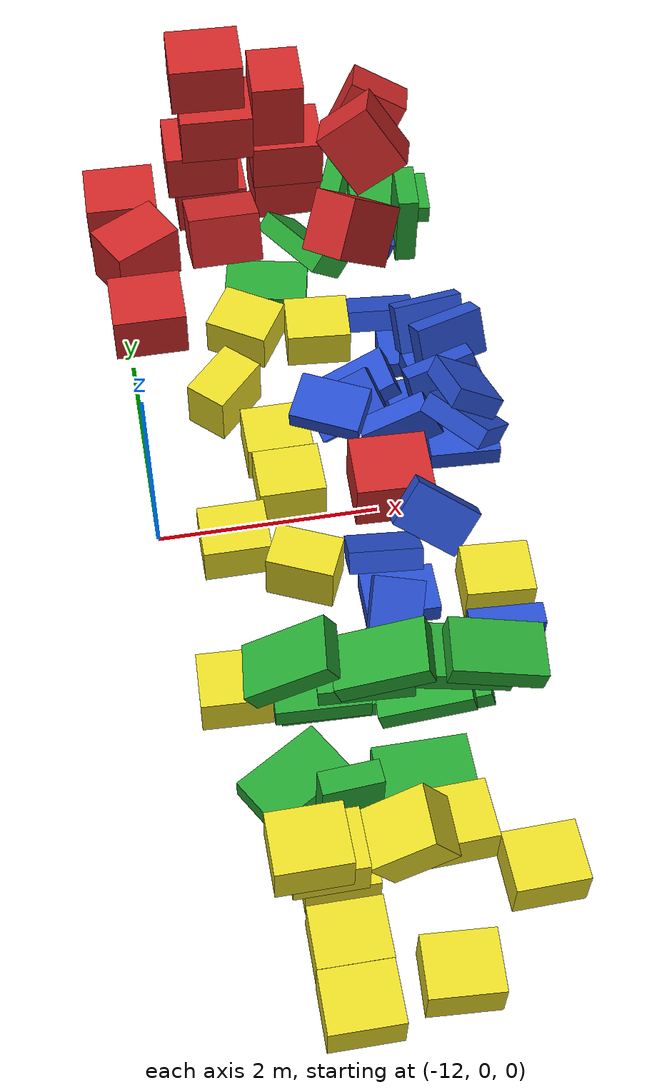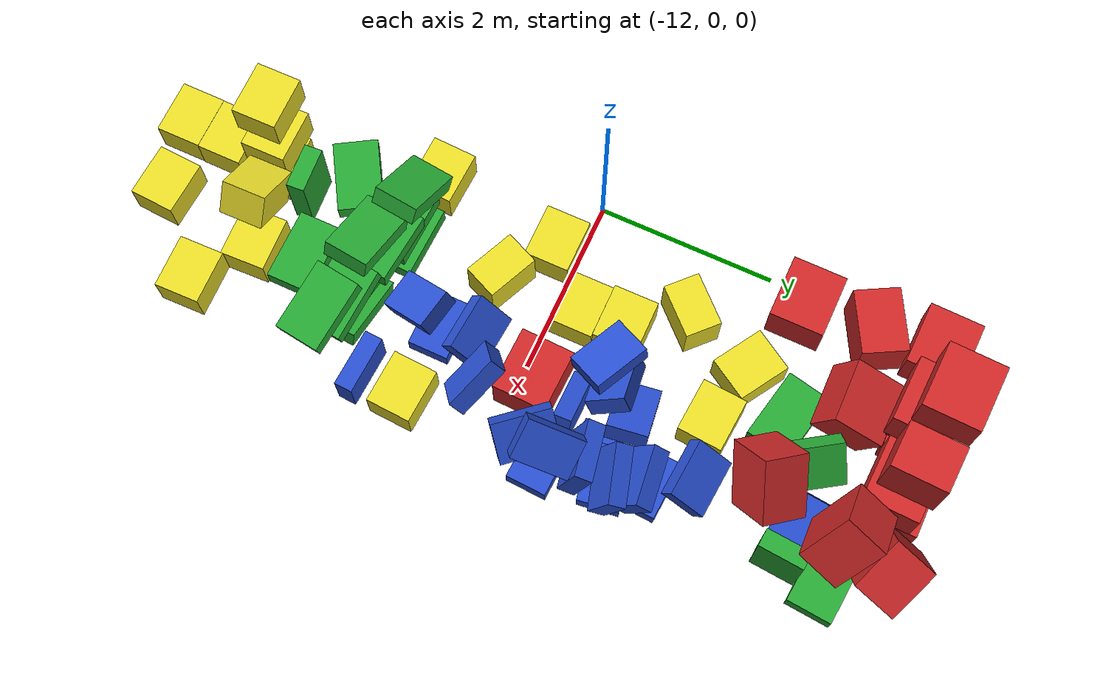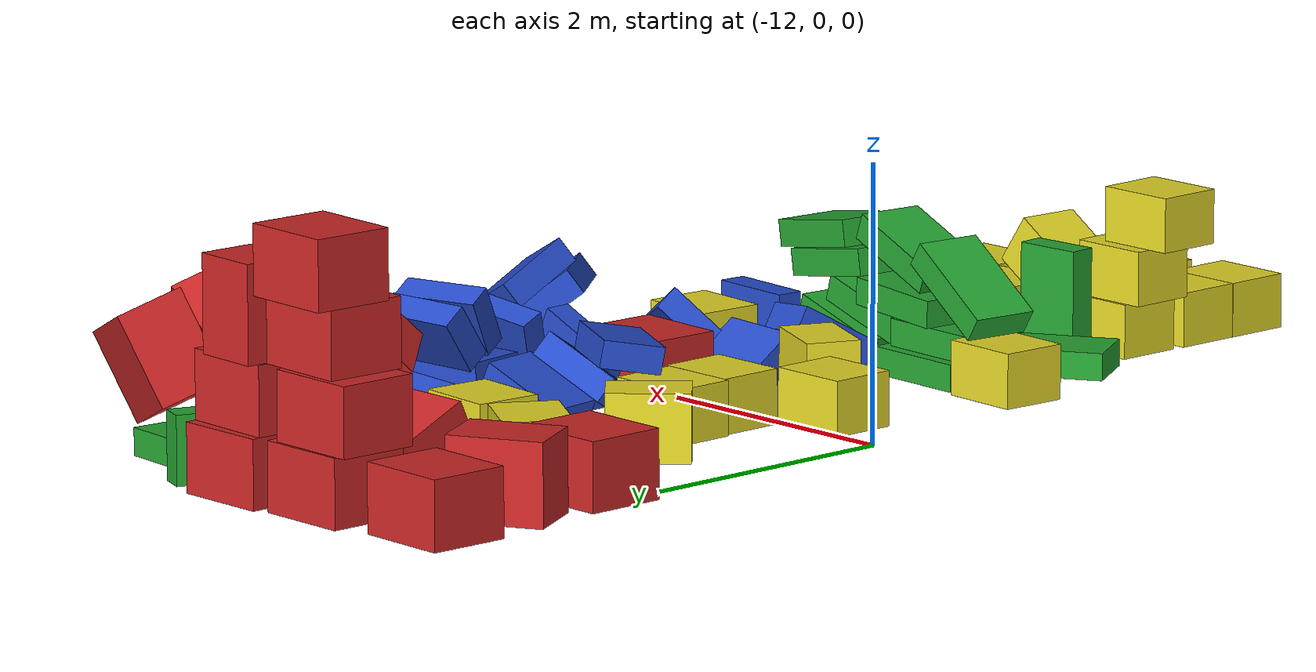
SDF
<sdf version="1.6">
 <world name="default">
  <model name="baggage_C">
   <static>0</static>
   <link name="link">
    <collision name="collision"><geometry><box><size>0.6 0.5 0.4</size></box></geometry></collision>
    <visual name="visual">
     <geometry><box><size>0.6 0.5 0.4</size></box></geometry>
     <material>
      <script><uri>file://media/materials/scripts/gazebo.material</uri><name>Gazebo/Yellow</name></script>
     </material>
    </visual>
    <inertial>
     <inertia><ixx>1</ixx><ixy>0</ixy><ixz>0</ixz><iyy>1</iyy><iyz>0</iyz><izz>1</izz></inertia>
     <mass>1</mass>
    </inertial>
   </link>
   <pose>-10.0024 -3.21625 0.19997 -0 1e-06 0.03848</pose>
  </model>
  <model name="baggage_B_clone_9">
   <static>0</static>
   <link name="link">
    <collision name="collision"><geometry><box><size>0.65 0.45 0.2</size></box></geometry></collision>
    <visual name="visual">
     <geometry><box><size>0.65 0.45 0.2</size></box></geometry>
     <material>
      <script><uri>file://media/materials/scripts/gazebo.material</uri><name>Gazebo/Blue</name></script>
     </material>
    </visual>
    <inertial>
     <inertia><ixx>1</ixx><ixy>0</ixy><ixz>0</ixz><iyy>1</iyy><iyz>0</iyz><izz>1</izz></inertia>
     <mass>1</mass>
    </inertial>
   </link>
   <pose>-9.09562 0.56977 0.099987 5e-06 1.2e-05 -0.04829</pose>
  </model>
  <model name="baggage_B_clone_12">
   <static>0</static>
   <link name="link">
    <collision name="collision"><geometry><box><size>0.65 0.45 0.2</size></box></geometry></collision>
    <visual name="visual">
     <geometry><box><size>0.65 0.45 0.2</size></box></geometry>
     <material>
      <script><uri>file://media/materials/scripts/gazebo.material</uri><name>Gazebo/Blue</name></script>
     </material>
    </visual>
    <inertial>
     <inertia><ixx>1</ixx><ixy>0</ixy><ixz>0</ixz><iyy>1</iyy><iyz>0</iyz><izz>1</izz></inertia>
     <mass>1</mass>
    </inertial>
   </link>
   <pose>-9.57464 2.12773 0.201535 -0.541106 -2.3e-05 -0.080653</pose>
  </model>
  <model name="baggage_B_clone_13">
   <static>0</static>
   <link name="link">
    <collision name="collision"><geometry><box><size>0.65 0.45 0.2</size></box></geometry></collision>
    <visual name="visual">
     <geometry><box><size>0.65 0.45 0.2</size></box></geometry>
     <material>
      <script><uri>file://media/materials/scripts/gazebo.material</uri><name>Gazebo/Blue</name></script>
     </material>
    </visual>
    <inertial>
     <inertia><ixx>1</ixx><ixy>0</ixy><ixz>0</ixz><iyy>1</iyy><iyz>0</iyz><izz>1</izz></inertia>
     <mass>1</mass>
    </inertial>
   </link>
   <pose>-9.33932 1.69038 0.099796 -6e-06 1.5e-05 -0.068763</pose>
  </model>
  <model name="baggage_B_clone_14">
   <static>0</static>
   <link name="link">
    <collision name="collision"><geometry><box><size>0.65 0.45 0.2</size></box></geometry></collision>
    <visual name="visual">
     <geometry><box><size>0.65 0.45 0.2</size></box></geometry>
     <material>
      <script><uri>file://media/materials/scripts/gazebo.material</uri><name>Gazebo/Blue</name></script>
     </material>
    </visual>
    <inertial>
     <inertia><ixx>1</ixx><ixy>0</ixy><ixz>0</ixz><iyy>1</iyy><iyz>0</iyz><izz>1</izz></inertia>
     <mass>1</mass>
    </inertial>
   </link>
   <pose>-9.56282 3.24194 0.200423 -3.14159 0.331866 -0.098079</pose>
  </model>
  <model name="baggage_B_clone_15">
   <static>0</static>
   <link name="link">
    <collision name="collision"><geometry><box><size>0.65 0.45 0.2</size></box></geometry></collision>
    <visual name="visual">
     <geometry><box><size>0.65 0.45 0.2</size></box></geometry>
     <material>
      <script><uri>file://media/materials/scripts/gazebo.material</uri><name>Gazebo/Blue</name></script>
     </material>
    </visual>
    <inertial>
     <inertia><ixx>1</ixx><ixy>0</ixy><ixz>0</ixz><iyy>1</iyy><iyz>0</iyz><izz>1</izz></inertia>
     <mass>1</mass>
    </inertial>
   </link>
   <pose>-9.99996 -1.00392 0.099626 3e-05 -5.6e-05 -0.006165</pose>
  </model>
  <model name="baggage_C_clone_0">
   <static>0</static>
   <link name="link">
    <collision name="collision"><geometry><box><size>0.6 0.5 0.4</size></box></geometry></collision>
    <visual name="visual">
     <geometry><box><size>0.6 0.5 0.4</size></box></geometry>
     <material>
      <script><uri>file://media/materials/scripts/gazebo.material</uri><name>Gazebo/Yellow</name></script>
     </material>
    </visual>
    <inertial>
     <inertia><ixx>1</ixx><ixy>0</ixy><ixz>0</ixz><iyy>1</iyy><iyz>0</iyz><izz>1</izz></inertia>
     <mass>1</mass>
    </inertial>
   </link>
   <pose>-11.0017 -4.52372 0.199999 1e-06 -2e-06 -0.001946</pose>
  </model>
  <model name="baggage_C_clone_1">
   <static>0</static>
   <link name="link">
    <collision name="collision"><geometry><box><size>0.6 0.5 0.4</size></box></geometry></collision>
    <visual name="visual">
     <geometry><box><size>0.6 0.5 0.4</size></box></geometry>
     <material>
      <script><uri>file://media/materials/scripts/gazebo.material</uri><name>Gazebo/Yellow</name></script>
     </material>
    </visual>
    <inertial>
     <inertia><ixx>1</ixx><ixy>0</ixy><ixz>0</ixz><iyy>1</iyy><iyz>0</iyz><izz>1</izz></inertia>
     <mass>1</mass>
    </inertial>
   </link>
   <pose>-9.38817 -3.67013 0.199992 -3.14158 5e-06 0.022305</pose>
  </model>
  <model name="baggage_C_clone_2">
   <static>0</static>
   <link name="link">
    <collision name="collision"><geometry><box><size>0.6 0.5 0.4</size></box></geometry></collision>
    <visual name="visual">
     <geometry><box><size>0.6 0.5 0.4</size></box></geometry>
     <material>
      <script><uri>file://media/materials/scripts/gazebo.material</uri><name>Gazebo/Yellow</name></script>
     </material>
    </visual>
    <inertial>
     <inertia><ixx>1</ixx><ixy>0</ixy><ixz>0</ixz><iyy>1</iyy><iyz>0</iyz><izz>1</izz></inertia>
     <mass>1</mass>
    </inertial>
   </link>
   <pose>-10.9967 -4.02251 0.199999 2e-06 2e-06 -0.001425</pose>
  </model>
  <model name="baggage_C_clone_3">
   <static>0</static>
   <link name="link">
    <collision name="collision"><geometry><box><size>0.6 0.5 0.4</size></box></geometry></collision>
    <visual name="visual">
     <geometry><box><size>0.6 0.5 0.4</size></box></geometry>
     <material>
      <script><uri>file://media/materials/scripts/gazebo.material</uri><name>Gazebo/Yellow</name></script>
     </material>
    </visual>
    <inertial>
     <inertia><ixx>1</ixx><ixy>0</ixy><ixz>0</ixz><iyy>1</iyy><iyz>0</iyz><izz>1</izz></inertia>
     <mass>1</mass>
    </inertial>
   </link>
   <pose>-10.8818 2.17288 0.200003 3e-05 -2.3e-05 -0.552718</pose>
  </model>
  <model name="baggage_C_clone_4">
   <static>0</static>
   <link name="link">
    <collision name="collision"><geometry><box><size>0.6 0.5 0.4</size></box></geometry></collision>
    <visual name="visual">
     <geometry><box><size>0.6 0.5 0.4</size></box></geometry>
     <material>
      <script><uri>file://media/materials/scripts/gazebo.material</uri><name>Gazebo/Yellow</name></script>
     </material>
    </visual>
    <inertial>
     <inertia><ixx>1</ixx><ixy>0</ixy><ixz>0</ixz><iyy>1</iyy><iyz>0</iyz><izz>1</izz></inertia>
     <mass>1</mass>
    </inertial>
   </link>
   <pose>-10.7751 -0.648973 0.25 -1.5708 1e-06 -0.420451</pose>
  </model>
  <model name="baggage_C_clone_5">
   <static>0</static>
   <link name="link">
    <collision name="collision"><geometry><box><size>0.6 0.5 0.4</size></box></geometry></collision>
    <visual name="visual">
     <geometry><box><size>0.6 0.5 0.4</size></box></geometry>
     <material>
      <script><uri>file://media/materials/scripts/gazebo.material</uri><name>Gazebo/Yellow</name></script>
     </material>
    </visual>
    <inertial>
     <inertia><ixx>1</ixx><ixy>0</ixy><ixz>0</ixz><iyy>1</iyy><iyz>0</iyz><izz>1</izz></inertia>
     <mass>1</mass>
    </inertial>
   </link>
   <pose>-9.15669 -1.03519 0.199995 -3.14159 0 -0.059287</pose>
  </model>
  <model name="baggage_C_clone_6">
   <static>0</static>
   <link name="link">
    <collision name="collision"><geometry><box><size>0.6 0.5 0.4</size></box></geometry></collision>
    <visual name="visual">
     <geometry><box><size>0.6 0.5 0.4</size></box></geometry>
     <material>
      <script><uri>file://media/materials/scripts/gazebo.material</uri><name>Gazebo/Yellow</name></script>
     </material>
    </visual>
    <inertial>
     <inertia><ixx>1</ixx><ixy>0</ixy><ixz>0</ixz><iyy>1</iyy><iyz>0</iyz><izz>1</izz></inertia>
     <mass>1</mass>
    </inertial>
   </link>
   <pose>-10.2092 -4.3999 0.200001 3.14159 -0 -0.062981</pose>
  </model>
  <model name="baggage_C_clone_7">
   <static>0</static>
   <link name="link">
    <collision name="collision"><geometry><box><size>0.6 0.5 0.4</size></box></geometry></collision>
    <visual name="visual">
     <geometry><box><size>0.6 0.5 0.4</size></box></geometry>
     <material>
      <script><uri>file://media/materials/scripts/gazebo.material</uri><name>Gazebo/Yellow</name></script>
     </material>
    </visual>
    <inertial>
     <inertia><ixx>1</ixx><ixy>0</ixy><ixz>0</ixz><iyy>1</iyy><iyz>0</iyz><izz>1</izz></inertia>
     <mass>1</mass>
    </inertial>
   </link>
   <pose>-11.238 -3.5718 0.999986 2.7e-05 -1.9e-05 0.007549</pose>
  </model>
  <model name="baggage_C_clone_8">
   <static>0</static>
   <link name="link">
    <collision name="collision"><geometry><box><size>0.6 0.5 0.4</size></box></geometry></collision>
    <visual name="visual">
     <geometry><box><size>0.6 0.5 0.4</size></box></geometry>
     <material>
      <script><uri>file://media/materials/scripts/gazebo.material</uri><name>Gazebo/Yellow</name></script>
     </material>
    </visual>
    <inertial>
     <inertia><ixx>1</ixx><ixy>0</ixy><ixz>0</ixz><iyy>1</iyy><iyz>0</iyz><izz>1</izz></inertia>
     <mass>1</mass>
    </inertial>
   </link>
   <pose>-10.4253 -3.38527 0.554591 0.022847 -0.577296 -0.003336</pose>
  </model>
  <model name="baggage_C_clone_9">
   <static>0</static>
   <link name="link">
    <collision name="collision"><geometry><box><size>0.6 0.5 0.4</size></box></geometry></collision>
    <visual name="visual">
     <geometry><box><size>0.6 0.5 0.4</size></box></geometry>
     <material>
      <script><uri>file://media/materials/scripts/gazebo.material</uri><name>Gazebo/Yellow</name></script>
     </material>
    </visual>
    <inertial>
     <inertia><ixx>1</ixx><ixy>0</ixy><ixz>0</ixz><iyy>1</iyy><iyz>0</iyz><izz>1</izz></inertia>
     <mass>1</mass>
    </inertial>
   </link>
   <pose>-11.2 1.37021 0.249999 -1.57079 1e-06 0.810669</pose>
  </model>
  <model name="baggage_C_clone_10">
   <static>0</static>
   <link name="link">
    <collision name="collision"><geometry><box><size>0.6 0.5 0.4</size></box></geometry></collision>
    <visual name="visual">
     <geometry><box><size>0.6 0.5 0.4</size></box></geometry>
     <material>
      <script><uri>file://media/materials/scripts/gazebo.material</uri><name>Gazebo/Yellow</name></script>
     </material>
    </visual>
    <inertial>
     <inertia><ixx>1</ixx><ixy>0</ixy><ixz>0</ixz><iyy>1</iyy><iyz>0</iyz><izz>1</izz></inertia>
     <mass>1</mass>
    </inertial>
   </link>
   <pose>-10.9828 -3.43446 0.200002 0 -8e-06 -0.003334</pose>
  </model>
  <model name="baggage_C_clone_11">
   <static>0</static>
   <link name="link">
    <collision name="collision"><geometry><box><size>0.6 0.5 0.4</size></box></geometry></collision>
    <visual name="visual">
     <geometry><box><size>0.6 0.5 0.4</size></box></geometry>
     <material>
      <script><uri>file://media/materials/scripts/gazebo.material</uri><name>Gazebo/Yellow</name></script>
     </material>
    </visual>
    <inertial>
     <inertia><ixx>1</ixx><ixy>0</ixy><ixz>0</ixz><iyy>1</iyy><iyz>0</iyz><izz>1</izz></inertia>
     <mass>1</mass>
    </inertial>
   </link>
   <pose>-11.086 -3.459 0.599988 1e-05 -2e-05 0.006204</pose>
  </model>
  <model name="baggage_C_clone_12">
   <static>0</static>
   <link name="link">
    <collision name="collision"><geometry><box><size>0.6 0.5 0.4</size></box></geometry></collision>
    <visual name="visual">
     <geometry><box><size>0.6 0.5 0.4</size></box></geometry>
     <material>
      <script><uri>file://media/materials/scripts/gazebo.material</uri><name>Gazebo/Yellow</name></script>
     </material>
    </visual>
    <inertial>
     <inertia><ixx>1</ixx><ixy>0</ixy><ixz>0</ixz><iyy>1</iyy><iyz>0</iyz><izz>1</izz></inertia>
     <mass>1</mass>
    </inertial>
   </link>
   <pose>-11.5507 -1.72457 0.2 0 0 -0.042376</pose>
  </model>
  <model name="baggage_C_clone_13">
   <static>0</static>
   <link name="link">
    <collision name="collision"><geometry><box><size>0.6 0.5 0.4</size></box></geometry></collision>
    <visual name="visual">
     <geometry><box><size>0.6 0.5 0.4</size></box></geometry>
     <material>
      <script><uri>file://media/materials/scripts/gazebo.material</uri><name>Gazebo/Yellow</name></script>
     </material>
    </visual>
    <inertial>
     <inertia><ixx>1</ixx><ixy>0</ixy><ixz>0</ixz><iyy>1</iyy><iyz>0</iyz><izz>1</izz></inertia>
     <mass>1</mass>
    </inertial>
   </link>
   <pose>-10.2107 2.01865 0.200039 -8e-06 -4.8e-05 -0.077626</pose>
  </model>
  <model name="baggage_C_clone_14">
   <static>0</static>
   <link name="link">
    <collision name="collision"><geometry><box><size>0.6 0.5 0.4</size></box></geometry></collision>
    <visual name="visual">
     <geometry><box><size>0.6 0.5 0.4</size></box></geometry>
     <material>
      <script><uri>file://media/materials/scripts/gazebo.material</uri><name>Gazebo/Yellow</name></script>
     </material>
    </visual>
    <inertial>
     <inertia><ixx>1</ixx><ixy>0</ixy><ixz>0</ixz><iyy>1</iyy><iyz>0</iyz><izz>1</izz></inertia>
     <mass>1</mass>
    </inertial>
   </link>
   <pose>-10.7647 0.281198 0.199983 0 1e-06 0.002002</pose>
  </model>
  <model name="baggage_C_clone_15">
   <static>0</static>
   <link name="link">
    <collision name="collision"><geometry><box><size>0.6 0.5 0.4</size></box></geometry></collision>
    <visual name="visual">
     <geometry><box><size>0.6 0.5 0.4</size></box></geometry>
     <material>
      <script><uri>file://media/materials/scripts/gazebo.material</uri><name>Gazebo/Yellow</name></script>
     </material>
    </visual>
    <inertial>
     <inertia><ixx>1</ixx><ixy>0</ixy><ixz>0</ixz><iyy>1</iyy><iyz>0</iyz><izz>1</izz></inertia>
     <mass>1</mass>
    </inertial>
   </link>
   <pose>-10.8004 0.781658 0.2 0 -0 0.004001</pose>
  </model>
  <model name="baggage_C_clone_16">
   <static>0</static>
   <link name="link">
    <collision name="collision"><geometry><box><size>0.6 0.5 0.4</size></box></geometry></collision>
    <visual name="visual">
     <geometry><box><size>0.6 0.5 0.4</size></box></geometry>
     <material>
      <script><uri>file://media/materials/scripts/gazebo.material</uri><name>Gazebo/Yellow</name></script>
     </material>
    </visual>
    <inertial>
     <inertia><ixx>1</ixx><ixy>0</ixy><ixz>0</ixz><iyy>1</iyy><iyz>0</iyz><izz>1</izz></inertia>
     <mass>1</mass>
    </inertial>
   </link>
   <pose>-11.3403 -0.250339 0.199999 1e-06 -2e-06 0.000189</pose>
  </model>
  <model name="baggage_A_clone_16">
   <static>0</static>
   <link name="link">
    <collision name="collision"><geometry><box><size>0.7 0.6 0.5</size></box></geometry></collision>
    <visual name="visual">
     <geometry><box><size>0.7 0.6 0.5</size></box></geometry>
     <material>
      <script><uri>file://media/materials/scripts/gazebo.material</uri><name>Gazebo/Red</name></script>
     </material>
    </visual>
    <inertial>
     <inertia><ixx>1</ixx><ixy>0</ixy><ixz>0</ixz><iyy>1</iyy><iyz>0</iyz><izz>1</izz></inertia>
     <mass>1</mass>
    </inertial>
   </link>
   <pose>-9.86076 0.147167 0.249983 2e-06 1e-06 -0.034937</pose>
  </model>
  <model name="baggage_D_clone_0">
   <static>0</static>
   <link name="link">
    <collision name="collision"><geometry><box><size>0.8 0.5 0.2</size></box></geometry></collision>
    <visual name="visual">
     <geometry><box><size>0.8 0.5 0.2</size></box></geometry>
     <material>
      <script><uri>file://media/materials/scripts/gazebo.material</uri><name>Gazebo/Green</name></script>
     </material>
    </visual>
    <inertial>
     <inertia><ixx>1</ixx><ixy>0</ixy><ixz>0</ixz><iyy>1</iyy><iyz>0</iyz><izz>1</izz></inertia>
     <mass>1</mass>
    </inertial>
   </link>
   <pose>-10.7939 -1.79789 0.099736 -4e-06 3.4e-05 -0.032781</pose>
  </model>
  <model name="baggage_D_clone_4">
   <static>0</static>
   <link name="link">
    <collision name="collision"><geometry><box><size>0.8 0.5 0.2</size></box></geometry></collision>
    <visual name="visual">
     <geometry><box><size>0.8 0.5 0.2</size></box></geometry>
     <material>
      <script><uri>file://media/materials/scripts/gazebo.material</uri><name>Gazebo/Green</name></script>
     </material>
    </visual>
    <inertial>
     <inertia><ixx>1</ixx><ixy>0</ixy><ixz>0</ixz><iyy>1</iyy><iyz>0</iyz><izz>1</izz></inertia>
     <mass>1</mass>
    </inertial>
   </link>
   <pose>-9.82362 -1.95477 0.200936 -2e-05 -0.264039 -0.081776</pose>
  </model>
  <model name="baggage_D_clone_7">
   <static>0</static>
   <link name="link">
    <collision name="collision"><geometry><box><size>0.8 0.5 0.2</size></box></geometry></collision>
    <visual name="visual">
     <geometry><box><size>0.8 0.5 0.2</size></box></geometry>
     <material>
      <script><uri>file://media/materials/scripts/gazebo.material</uri><name>Gazebo/Green</name></script>
     </material>
    </visual>
    <inertial>
     <inertia><ixx>1</ixx><ixy>0</ixy><ixz>0</ixz><iyy>1</iyy><iyz>0</iyz><izz>1</izz></inertia>
     <mass>1</mass>
    </inertial>
   </link>
   <pose>-11.1894 -2.58897 0.1 -3.14159 -0 -2.59962</pose>
  </model>
  <model name="baggage_D_clone_8">
   <static>0</static>
   <link name="link">
    <collision name="collision"><geometry><box><size>0.8 0.5 0.2</size></box></geometry></collision>
    <visual name="visual">
     <geometry><box><size>0.8 0.5 0.2</size></box></geometry>
     <material>
      <script><uri>file://media/materials/scripts/gazebo.material</uri><name>Gazebo/Green</name></script>
     </material>
    </visual>
    <inertial>
     <inertia><ixx>1</ixx><ixy>0</ixy><ixz>0</ixz><iyy>1</iyy><iyz>0</iyz><izz>1</izz></inertia>
     <mass>1</mass>
    </inertial>
   </link>
   <pose>-10.8045 -2.95992 0.4 -1.78421 -1.57079 0.281605</pose>
  </model>
  <model name="baggage_D_clone_9">
   <static>0</static>
   <link name="link">
    <collision name="collision"><geometry><box><size>0.8 0.5 0.2</size></box></geometry></collision>
    <visual name="visual">
     <geometry><box><size>0.8 0.5 0.2</size></box></geometry>
     <material>
      <script><uri>file://media/materials/scripts/gazebo.material</uri><name>Gazebo/Green</name></script>
     </material>
    </visual>
    <inertial>
     <inertia><ixx>1</ixx><ixy>0</ixy><ixz>0</ixz><iyy>1</iyy><iyz>0</iyz><izz>1</izz></inertia>
     <mass>1</mass>
    </inertial>
   </link>
   <pose>-11.0958 -1.82879 0.701913 -2e-05 -0.576569 -0.11261</pose>
  </model>
  <model name="baggage_D_clone_10">
   <static>0</static>
   <link name="link">
    <collision name="collision"><geometry><box><size>0.8 0.5 0.2</size></box></geometry></collision>
    <visual name="visual">
     <geometry><box><size>0.8 0.5 0.2</size></box></geometry>
     <material>
      <script><uri>file://media/materials/scripts/gazebo.material</uri><name>Gazebo/Green</name></script>
     </material>
    </visual>
    <inertial>
     <inertia><ixx>1</ixx><ixy>0</ixy><ixz>0</ixz><iyy>1</iyy><iyz>0</iyz><izz>1</izz></inertia>
     <mass>1</mass>
    </inertial>
   </link>
   <pose>-10.8568 -1.88671 0.299729 -5e-06 3.4e-05 -0.042346</pose>
  </model>
  <model name="baggage_D_clone_11">
   <static>0</static>
   <link name="link">
    <collision name="collision"><geometry><box><size>0.8 0.5 0.2</size></box></geometry></collision>
    <visual name="visual">
     <geometry><box><size>0.8 0.5 0.2</size></box></geometry>
     <material>
      <script><uri>file://media/materials/scripts/gazebo.material</uri><name>Gazebo/Green</name></script>
     </material>
    </visual>
    <inertial>
     <inertia><ixx>1</ixx><ixy>0</ixy><ixz>0</ixz><iyy>1</iyy><iyz>0</iyz><izz>1</izz></inertia>
     <mass>1</mass>
    </inertial>
   </link>
   <pose>-10.3705 -2.00141 0.838906 0.001715 -0.346404 -0.115711</pose>
  </model>
  <model name="baggage_D_clone_12">
   <static>0</static>
   <link name="link">
    <collision name="collision"><geometry><box><size>0.8 0.5 0.2</size></box></geometry></collision>
    <visual name="visual">
     <geometry><box><size>0.8 0.5 0.2</size></box></geometry>
     <material>
      <script><uri>file://media/materials/scripts/gazebo.material</uri><name>Gazebo/Green</name></script>
     </material>
    </visual>
    <inertial>
     <inertia><ixx>1</ixx><ixy>0</ixy><ixz>0</ixz><iyy>1</iyy><iyz>0</iyz><izz>1</izz></inertia>
     <mass>1</mass>
    </inertial>
   </link>
   <pose>-9.45974 -2.08699 0.831532 -0.009163 0.168599 -0.136194</pose>
  </model>
  <model name="baggage_D_clone_13">
   <static>0</static>
   <link name="link">
    <collision name="collision"><geometry><box><size>0.8 0.5 0.2</size></box></geometry></collision>
    <visual name="visual">
     <geometry><box><size>0.8 0.5 0.2</size></box></geometry>
     <material>
      <script><uri>file://media/materials/scripts/gazebo.material</uri><name>Gazebo/Green</name></script>
     </material>
    </visual>
    <inertial>
     <inertia><ixx>1</ixx><ixy>0</ixy><ixz>0</ixz><iyy>1</iyy><iyz>0</iyz><izz>1</izz></inertia>
     <mass>1</mass>
    </inertial>
   </link>
   <pose>-9.69969 -1.99267 0.67073 -0.003448 0.168818 -0.102165</pose>
  </model>
  <model name="baggage_D_clone_14">
   <static>0</static>
   <link name="link">
    <collision name="collision"><geometry><box><size>0.8 0.5 0.2</size></box></geometry></collision>
    <visual name="visual">
     <geometry><box><size>0.8 0.5 0.2</size></box></geometry>
     <material>
      <script><uri>file://media/materials/scripts/gazebo.material</uri><name>Gazebo/Green</name></script>
     </material>
    </visual>
    <inertial>
     <inertia><ixx>1</ixx><ixy>0</ixy><ixz>0</ixz><iyy>1</iyy><iyz>0</iyz><izz>1</izz></inertia>
     <mass>1</mass>
    </inertial>
   </link>
   <pose>-10.4951 -1.8853 0.519063 1.5e-05 -0.048599 -0.081861</pose>
  </model>
  <model name="baggage_D_clone_15">
   <static>0</static>
   <link name="link">
    <collision name="collision"><geometry><box><size>0.8 0.5 0.2</size></box></geometry></collision>
    <visual name="visual">
     <geometry><box><size>0.8 0.5 0.2</size></box></geometry>
     <material>
      <script><uri>file://media/materials/scripts/gazebo.material</uri><name>Gazebo/Green</name></script>
     </material>
    </visual>
    <inertial>
     <inertia><ixx>1</ixx><ixy>0</ixy><ixz>0</ixz><iyy>1</iyy><iyz>0</iyz><izz>1</izz></inertia>
     <mass>1</mass>
    </inertial>
   </link>
   <pose>-10.0127 -2.05534 0.359313 -1.5e-05 -0.263986 -0.081723</pose>
  </model>
  <model name="baggage_D_clone_16">
   <static>0</static>
   <link name="link">
    <collision name="collision"><geometry><box><size>0.8 0.5 0.2</size></box></geometry></collision>
    <visual name="visual">
     <geometry><box><size>0.8 0.5 0.2</size></box></geometry>
     <material>
      <script><uri>file://media/materials/scripts/gazebo.material</uri><name>Gazebo/Green</name></script>
     </material>
    </visual>
    <inertial>
     <inertia><ixx>1</ixx><ixy>0</ixy><ixz>0</ixz><iyy>1</iyy><iyz>0</iyz><izz>1</izz></inertia>
     <mass>1</mass>
    </inertial>
   </link>
   <pose>-10.1334 -2.69927 0.1 -3.14159 -0 -0.00069</pose>
  </model>
  <model name="baggage_A_clone_24">
   <static>0</static>
   <link name="link">
    <collision name="collision"><geometry><box><size>0.7 0.6 0.5</size></box></geometry></collision>
    <visual name="visual">
     <geometry><box><size>0.7 0.6 0.5</size></box></geometry>
     <material>
      <script><uri>file://media/materials/scripts/gazebo.material</uri><name>Gazebo/Red</name></script>
     </material>
    </visual>
    <inertial>
     <inertia><ixx>1</ixx><ixy>0</ixy><ixz>0</ixz><iyy>1</iyy><iyz>0</iyz><izz>1</izz></inertia>
     <mass>1</mass>
    </inertial>
   </link>
   <pose>-9.34429 4.19633 0.846591 -0.879057 1.06321 -2.75863</pose>
  </model>
  <model name="baggage_D_clone_48">
   <static>0</static>
   <link name="link">
    <collision name="collision"><geometry><box><size>0.8 0.5 0.2</size></box></geometry></collision>
    <visual name="visual">
     <geometry><box><size>0.8 0.5 0.2</size></box></geometry>
     <material>
      <script><uri>file://media/materials/scripts/gazebo.material</uri><name>Gazebo/Green</name></script>
     </material>
    </visual>
    <inertial>
     <inertia><ixx>1</ixx><ixy>0</ixy><ixz>0</ixz><iyy>1</iyy><iyz>0</iyz><izz>1</izz></inertia>
     <mass>1</mass>
    </inertial>
   </link>
   <pose>-9.12047 3.21102 0.399963 0.074854 -1.57076 -0.157951</pose>
  </model>
  <model name="baggage_D_clone_49">
   <static>0</static>
   <link name="link">
    <collision name="collision"><geometry><box><size>0.8 0.5 0.2</size></box></geometry></collision>
    <visual name="visual">
     <geometry><box><size>0.8 0.5 0.2</size></box></geometry>
     <material>
      <script><uri>file://media/materials/scripts/gazebo.material</uri><name>Gazebo/Green</name></script>
     </material>
    </visual>
    <inertial>
     <inertia><ixx>1</ixx><ixy>0</ixy><ixz>0</ixz><iyy>1</iyy><iyz>0</iyz><izz>1</izz></inertia>
     <mass>1</mass>
    </inertial>
   </link>
   <pose>-10.5929 2.74285 0.09999 3e-06 -3e-06 -0.208177</pose>
  </model>
  <model name="baggage_D_clone_55">
   <static>0</static>
   <link name="link">
    <collision name="collision"><geometry><box><size>0.8 0.5 0.2</size></box></geometry></collision>
    <visual name="visual">
     <geometry><box><size>0.8 0.5 0.2</size></box></geometry>
     <material>
      <script><uri>file://media/materials/scripts/gazebo.material</uri><name>Gazebo/Green</name></script>
     </material>
    </visual>
    <inertial>
     <inertia><ixx>1</ixx><ixy>0</ixy><ixz>0</ixz><iyy>1</iyy><iyz>0</iyz><izz>1</izz></inertia>
     <mass>1</mass>
    </inertial>
   </link>
   <pose>-9.16961 3.72453 0.099983 3.14159 -3e-06 3.05255</pose>
  </model>
  <model name="baggage_D_clone_83">
   <static>0</static>
   <link name="link">
    <collision name="collision"><geometry><box><size>0.8 0.5 0.2</size></box></geometry></collision>
    <visual name="visual">
     <geometry><box><size>0.8 0.5 0.2</size></box></geometry>
     <material>
      <script><uri>file://media/materials/scripts/gazebo.material</uri><name>Gazebo/Green</name></script>
     </material>
    </visual>
    <inertial>
     <inertia><ixx>1</ixx><ixy>0</ixy><ixz>0</ixz><iyy>1</iyy><iyz>0</iyz><izz>1</izz></inertia>
     <mass>1</mass>
    </inertial>
   </link>
   <pose>-10.1651 3.09873 0.247816 -2.35244 -0 2.14941</pose>
  </model>
  <model name="baggage_D_clone_84">
   <static>0</static>
   <link name="link">
    <collision name="collision"><geometry><box><size>0.8 0.5 0.2</size></box></geometry></collision>
    <visual name="visual">
     <geometry><box><size>0.8 0.5 0.2</size></box></geometry>
     <material>
      <script><uri>file://media/materials/scripts/gazebo.material</uri><name>Gazebo/Green</name></script>
     </material>
    </visual>
    <inertial>
     <inertia><ixx>1</ixx><ixy>0</ixy><ixz>0</ixz><iyy>1</iyy><iyz>0</iyz><izz>1</izz></inertia>
     <mass>1</mass>
    </inertial>
   </link>
   <pose>-9.69677 3.89547 0.2498 1.5708 -2.9e-05 -1.92474</pose>
  </model>
  <model name="baggage_A_clone_46">
   <static>0</static>
   <link name="link">
    <collision name="collision"><geometry><box><size>0.7 0.6 0.5</size></box></geometry></collision>
    <visual name="visual">
     <geometry><box><size>0.7 0.6 0.5</size></box></geometry>
     <material>
      <script><uri>file://media/materials/scripts/gazebo.material</uri><name>Gazebo/Red</name></script>
     </material>
    </visual>
    <inertial>
     <inertia><ixx>1</ixx><ixy>0</ixy><ixz>0</ixz><iyy>1</iyy><iyz>0</iyz><izz>1</izz></inertia>
     <mass>1</mass>
    </inertial>
   </link>
   <pose>-9.45464 3.71131 0.955351 2.06584 -0.835131 2.49959</pose>
  </model>
  <model name="baggage_A_clone_51">
   <static>0</static>
   <link name="link">
    <collision name="collision"><geometry><box><size>0.7 0.6 0.5</size></box></geometry></collision>
    <visual name="visual">
     <geometry><box><size>0.7 0.6 0.5</size></box></geometry>
     <material>
      <script><uri>file://media/materials/scripts/gazebo.material</uri><name>Gazebo/Red</name></script>
     </material>
    </visual>
    <inertial>
     <inertia><ixx>1</ixx><ixy>0</ixy><ixz>0</ixz><iyy>1</iyy><iyz>0</iyz><izz>1</izz></inertia>
     <mass>1</mass>
    </inertial>
   </link>
   <pose>-10.2045 4.00705 0.749965 0 -2e-05 -0.037543</pose>
  </model>
  <model name="baggage_A_clone_52">
   <static>0</static>
   <link name="link">
    <collision name="collision"><geometry><box><size>0.7 0.6 0.5</size></box></geometry></collision>
    <visual name="visual">
     <geometry><box><size>0.7 0.6 0.5</size></box></geometry>
     <material>
      <script><uri>file://media/materials/scripts/gazebo.material</uri><name>Gazebo/Red</name></script>
     </material>
    </visual>
    <inertial>
     <inertia><ixx>1</ixx><ixy>0</ixy><ixz>0</ixz><iyy>1</iyy><iyz>0</iyz><izz>1</izz></inertia>
     <mass>1</mass>
    </inertial>
   </link>
   <pose>-11.7995 2.44132 0.249999 -3.14159 -3e-06 -0.002736</pose>
  </model>
  <model name="baggage_A_clone_53">
   <static>0</static>
   <link name="link">
    <collision name="collision"><geometry><box><size>0.7 0.6 0.5</size></box></geometry></collision>
    <visual name="visual">
     <geometry><box><size>0.7 0.6 0.5</size></box></geometry>
     <material>
      <script><uri>file://media/materials/scripts/gazebo.material</uri><name>Gazebo/Red</name></script>
     </material>
    </visual>
    <inertial>
     <inertia><ixx>1</ixx><ixy>0</ixy><ixz>0</ixz><iyy>1</iyy><iyz>0</iyz><izz>1</izz></inertia>
     <mass>1</mass>
    </inertial>
   </link>
   <pose>-11.9035 3.9345 0.25 0 0 -0.024282</pose>
  </model>
  <model name="baggage_A_clone_54">
   <static>0</static>
   <link name="link">
    <collision name="collision"><geometry><box><size>0.7 0.6 0.5</size></box></geometry></collision>
    <visual name="visual">
     <geometry><box><size>0.7 0.6 0.5</size></box></geometry>
     <material>
      <script><uri>file://media/materials/scripts/gazebo.material</uri><name>Gazebo/Red</name></script>
     </material>
    </visual>
    <inertial>
     <inertia><ixx>1</ixx><ixy>0</ixy><ixz>0</ixz><iyy>1</iyy><iyz>0</iyz><izz>1</izz></inertia>
     <mass>1</mass>
    </inertial>
   </link>
   <pose>-10.1966 4.07769 0.249998 -3e-06 -1.2e-05 -0.001646</pose>
  </model>
  <model name="baggage_A_clone_56">
   <static>0</static>
   <link name="link">
    <collision name="collision"><geometry><box><size>0.7 0.6 0.5</size></box></geometry></collision>
    <visual name="visual">
     <geometry><box><size>0.7 0.6 0.5</size></box></geometry>
     <material>
      <script><uri>file://media/materials/scripts/gazebo.material</uri><name>Gazebo/Red</name></script>
     </material>
    </visual>
    <inertial>
     <inertia><ixx>1</ixx><ixy>0</ixy><ixz>0</ixz><iyy>1</iyy><iyz>0</iyz><izz>1</izz></inertia>
     <mass>1</mass>
    </inertial>
   </link>
   <pose>-11.8224 3.23038 0.299999 1.57079 -2e-06 -2.64298</pose>
  </model>
  <model name="baggage_A_clone_57">
   <static>0</static>
   <link name="link">
    <collision name="collision"><geometry><box><size>0.7 0.6 0.5</size></box></geometry></collision>
    <visual name="visual">
     <geometry><box><size>0.7 0.6 0.5</size></box></geometry>
     <material>
      <script><uri>file://media/materials/scripts/gazebo.material</uri><name>Gazebo/Red</name></script>
     </material>
    </visual>
    <inertial>
     <inertia><ixx>1</ixx><ixy>0</ixy><ixz>0</ixz><iyy>1</iyy><iyz>0</iyz><izz>1</izz></inertia>
     <mass>1</mass>
    </inertial>
   </link>
   <pose>-9.73882 2.80488 0.721764 -1.99958 0.677475 0.428989</pose>
  </model>
  <model name="baggage_A_clone_58">
   <static>0</static>
   <link name="link">
    <collision name="collision"><geometry><box><size>0.7 0.6 0.5</size></box></geometry></collision>
    <visual name="visual">
     <geometry><box><size>0.7 0.6 0.5</size></box></geometry>
     <material>
      <script><uri>file://media/materials/scripts/gazebo.material</uri><name>Gazebo/Red</name></script>
     </material>
    </visual>
    <inertial>
     <inertia><ixx>1</ixx><ixy>0</ixy><ixz>0</ixz><iyy>1</iyy><iyz>0</iyz><izz>1</izz></inertia>
     <mass>1</mass>
    </inertial>
   </link>
   <pose>-10.9413 3.34498 0.350787 -0.421082 -2.8e-05 0.012687</pose>
  </model>
  <model name="baggage_A_clone_62">
   <static>0</static>
   <link name="link">
    <collision name="collision"><geometry><box><size>0.7 0.6 0.5</size></box></geometry></collision>
    <visual name="visual">
     <geometry><box><size>0.7 0.6 0.5</size></box></geometry>
     <material>
      <script><uri>file://media/materials/scripts/gazebo.material</uri><name>Gazebo/Red</name></script>
     </material>
    </visual>
    <inertial>
     <inertia><ixx>1</ixx><ixy>0</ixy><ixz>0</ixz><iyy>1</iyy><iyz>0</iyz><izz>1</izz></inertia>
     <mass>1</mass>
    </inertial>
   </link>
   <pose>-10.9582 4.11572 1.74996 -3.1e-05 -0.000107 -0.036127</pose>
  </model>
  <model name="baggage_A_clone_63">
   <static>0</static>
   <link name="link">
    <collision name="collision"><geometry><box><size>0.7 0.6 0.5</size></box></geometry></collision>
    <visual name="visual">
     <geometry><box><size>0.7 0.6 0.5</size></box></geometry>
     <material>
      <script><uri>file://media/materials/scripts/gazebo.material</uri><name>Gazebo/Red</name></script>
     </material>
    </visual>
    <inertial>
     <inertia><ixx>1</ixx><ixy>0</ixy><ixz>0</ixz><iyy>1</iyy><iyz>0</iyz><izz>1</izz></inertia>
     <mass>1</mass>
    </inertial>
   </link>
   <pose>-10.2824 4.0781 1.35 -0.712045 1.57077 -0.756846</pose>
  </model>
  <model name="baggage_A_clone_64">
   <static>0</static>
   <link name="link">
    <collision name="collision"><geometry><box><size>0.7 0.6 0.5</size></box></geometry></collision>
    <visual name="visual">
     <geometry><box><size>0.7 0.6 0.5</size></box></geometry>
     <material>
      <script><uri>file://media/materials/scripts/gazebo.material</uri><name>Gazebo/Red</name></script>
     </material>
    </visual>
    <inertial>
     <inertia><ixx>1</ixx><ixy>0</ixy><ixz>0</ixz><iyy>1</iyy><iyz>0</iyz><izz>1</izz></inertia>
     <mass>1</mass>
    </inertial>
   </link>
   <pose>-10.9009 3.9573 1.24996 7e-06 -0.000126 -0.041614</pose>
  </model>
  <model name="baggage_A_clone_65">
   <static>0</static>
   <link name="link">
    <collision name="collision"><geometry><box><size>0.7 0.6 0.5</size></box></geometry></collision>
    <visual name="visual">
     <geometry><box><size>0.7 0.6 0.5</size></box></geometry>
     <material>
      <script><uri>file://media/materials/scripts/gazebo.material</uri><name>Gazebo/Red</name></script>
     </material>
    </visual>
    <inertial>
     <inertia><ixx>1</ixx><ixy>0</ixy><ixz>0</ixz><iyy>1</iyy><iyz>0</iyz><izz>1</izz></inertia>
     <mass>1</mass>
    </inertial>
   </link>
   <pose>-10.986 4.02791 0.249955 -3e-06 -6e-06 -0.008289</pose>
  </model>
  <model name="baggage_A_clone_66">
   <static>0</static>
   <link name="link">
    <collision name="collision"><geometry><box><size>0.7 0.6 0.5</size></box></geometry></collision>
    <visual name="visual">
     <geometry><box><size>0.7 0.6 0.5</size></box></geometry>
     <material>
      <script><uri>file://media/materials/scripts/gazebo.material</uri><name>Gazebo/Red</name></script>
     </material>
    </visual>
    <inertial>
     <inertia><ixx>1</ixx><ixy>0</ixy><ixz>0</ixz><iyy>1</iyy><iyz>0</iyz><izz>1</izz></inertia>
     <mass>1</mass>
    </inertial>
   </link>
   <pose>-11.0671 4.00866 0.749877 -2e-06 -1.1e-05 -0.015917</pose>
  </model>
  <model name="baggage_B_clone_46">
   <static>0</static>
   <link name="link">
    <collision name="collision"><geometry><box><size>0.65 0.45 0.2</size></box></geometry></collision>
    <visual name="visual">
     <geometry><box><size>0.65 0.45 0.2</size></box></geometry>
     <material>
      <script><uri>file://media/materials/scripts/gazebo.material</uri><name>Gazebo/Blue</name></script>
     </material>
    </visual>
    <inertial>
     <inertia><ixx>1</ixx><ixy>0</ixy><ixz>0</ixz><iyy>1</iyy><iyz>0</iyz><izz>1</izz></inertia>
     <mass>1</mass>
    </inertial>
   </link>
   <pose>-9.3746 1.06615 0.1 0 -0 0.041661</pose>
  </model>
  <model name="baggage_B_clone_81">
   <static>0</static>
   <link name="link">
    <collision name="collision"><geometry><box><size>0.65 0.45 0.2</size></box></geometry></collision>
    <visual name="visual">
     <geometry><box><size>0.65 0.45 0.2</size></box></geometry>
     <material>
      <script><uri>file://media/materials/scripts/gazebo.material</uri><name>Gazebo/Blue</name></script>
     </material>
    </visual>
    <inertial>
     <inertia><ixx>1</ixx><ixy>0</ixy><ixz>0</ixz><iyy>1</iyy><iyz>0</iyz><izz>1</izz></inertia>
     <mass>1</mass>
    </inertial>
   </link>
   <pose>-9.15925 1.28864 0.300113 -5e-06 -7e-05 0.132721</pose>
  </model>
  <model name="baggage_B_clone_82">
   <static>0</static>
   <link name="link">
    <collision name="collision"><geometry><box><size>0.65 0.45 0.2</size></box></geometry></collision>
    <visual name="visual">
     <geometry><box><size>0.65 0.45 0.2</size></box></geometry>
     <material>
      <script><uri>file://media/materials/scripts/gazebo.material</uri><name>Gazebo/Blue</name></script>
     </material>
    </visual>
    <inertial>
     <inertia><ixx>1</ixx><ixy>0</ixy><ixz>0</ixz><iyy>1</iyy><iyz>0</iyz><izz>1</izz></inertia>
     <mass>1</mass>
    </inertial>
   </link>
   <pose>-10.1036 -1.29911 0.273977 -2.99974 -0.515295 1.28225</pose>
  </model>
  <model name="baggage_B_clone_83">
   <static>0</static>
   <link name="link">
    <collision name="collision"><geometry><box><size>0.65 0.45 0.2</size></box></geometry></collision>
    <visual name="visual">
     <geometry><box><size>0.65 0.45 0.2</size></box></geometry>
     <material>
      <script><uri>file://media/materials/scripts/gazebo.material</uri><name>Gazebo/Blue</name></script>
     </material>
    </visual>
    <inertial>
     <inertia><ixx>1</ixx><ixy>0</ixy><ixz>0</ixz><iyy>1</iyy><iyz>0</iyz><izz>1</izz></inertia>
     <mass>1</mass>
    </inertial>
   </link>
   <pose>-9.20004 -1.55236 0.225077 1.57164 1e-06 -0.056321</pose>
  </model>
  <model name="baggage_B_clone_84">
   <static>0</static>
   <link name="link">
    <collision name="collision"><geometry><box><size>0.65 0.45 0.2</size></box></geometry></collision>
    <visual name="visual">
     <geometry><box><size>0.65 0.45 0.2</size></box></geometry>
     <material>
      <script><uri>file://media/materials/scripts/gazebo.material</uri><name>Gazebo/Blue</name></script>
     </material>
    </visual>
    <inertial>
     <inertia><ixx>1</ixx><ixy>0</ixy><ixz>0</ixz><iyy>1</iyy><iyz>0</iyz><izz>1</izz></inertia>
     <mass>1</mass>
    </inertial>
   </link>
   <pose>-9.21412 0.982769 0.493711 1.19625 -0.156806 0.193999</pose>
  </model>
  <model name="baggage_B_clone_85">
   <static>0</static>
   <link name="link">
    <collision name="collision"><geometry><box><size>0.65 0.45 0.2</size></box></geometry></collision>
    <visual name="visual">
     <geometry><box><size>0.65 0.45 0.2</size></box></geometry>
     <material>
      <script><uri>file://media/materials/scripts/gazebo.material</uri><name>Gazebo/Blue</name></script>
     </material>
    </visual>
    <inertial>
     <inertia><ixx>1</ixx><ixy>0</ixy><ixz>0</ixz><iyy>1</iyy><iyz>0</iyz><izz>1</izz></inertia>
     <mass>1</mass>
    </inertial>
   </link>
   <pose>-9.09259 1.35435 0.646053 1.10832 -8.7e-05 0.286339</pose>
  </model>
  <model name="baggage_B_clone_86">
   <static>0</static>
   <link name="link">
    <collision name="collision"><geometry><box><size>0.65 0.45 0.2</size></box></geometry></collision>
    <visual name="visual">
     <geometry><box><size>0.65 0.45 0.2</size></box></geometry>
     <material>
      <script><uri>file://media/materials/scripts/gazebo.material</uri><name>Gazebo/Blue</name></script>
     </material>
    </visual>
    <inertial>
     <inertia><ixx>1</ixx><ixy>0</ixy><ixz>0</ixz><iyy>1</iyy><iyz>0</iyz><izz>1</izz></inertia>
     <mass>1</mass>
    </inertial>
   </link>
   <pose>-9.22216 1.62111 0.595621 0.961589 -0.009981 0.118391</pose>
  </model>
  <model name="baggage_B_clone_87">
   <static>0</static>
   <link name="link">
    <collision name="collision"><geometry><box><size>0.65 0.45 0.2</size></box></geometry></collision>
    <visual name="visual">
     <geometry><box><size>0.65 0.45 0.2</size></box></geometry>
     <material>
      <script><uri>file://media/materials/scripts/gazebo.material</uri><name>Gazebo/Blue</name></script>
     </material>
    </visual>
    <inertial>
     <inertia><ixx>1</ixx><ixy>0</ixy><ixz>0</ixz><iyy>1</iyy><iyz>0</iyz><izz>1</izz></inertia>
     <mass>1</mass>
    </inertial>
   </link>
   <pose>-9.1529 0.38271 0.695027 2.49267 0.019883 -0.871063</pose>
  </model>
  <model name="baggage_B_clone_88">
   <static>0</static>
   <link name="link">
    <collision name="collision"><geometry><box><size>0.65 0.45 0.2</size></box></geometry></collision>
    <visual name="visual">
     <geometry><box><size>0.65 0.45 0.2</size></box></geometry>
     <material>
      <script><uri>file://media/materials/scripts/gazebo.material</uri><name>Gazebo/Blue</name></script>
     </material>
    </visual>
    <inertial>
     <inertia><ixx>1</ixx><ixy>0</ixy><ixz>0</ixz><iyy>1</iyy><iyz>0</iyz><izz>1</izz></inertia>
     <mass>1</mass>
    </inertial>
   </link>
   <pose>-9.09706 0.652289 0.785352 2.59676 -0.372426 -1.43802</pose>
  </model>
  <model name="baggage_B_clone_94">
   <static>0</static>
   <link name="link">
    <collision name="collision"><geometry><box><size>0.65 0.45 0.2</size></box></geometry></collision>
    <visual name="visual">
     <geometry><box><size>0.65 0.45 0.2</size></box></geometry>
     <material>
      <script><uri>file://media/materials/scripts/gazebo.material</uri><name>Gazebo/Blue</name></script>
     </material>
    </visual>
    <inertial>
     <inertia><ixx>1</ixx><ixy>0</ixy><ixz>0</ixz><iyy>1</iyy><iyz>0</iyz><izz>1</izz></inertia>
     <mass>1</mass>
    </inertial>
   </link>
   <pose>-9.92939 1.25613 0.221387 -3.5e-05 -0.410635 0.13476</pose>
  </model>
  <model name="baggage_B_clone_96">
   <static>0</static>
   <link name="link">
    <collision name="collision"><geometry><box><size>0.65 0.45 0.2</size></box></geometry></collision>
    <visual name="visual">
     <geometry><box><size>0.65 0.45 0.2</size></box></geometry>
     <material>
      <script><uri>file://media/materials/scripts/gazebo.material</uri><name>Gazebo/Blue</name></script>
     </material>
    </visual>
    <inertial>
     <inertia><ixx>1</ixx><ixy>0</ixy><ixz>0</ixz><iyy>1</iyy><iyz>0</iyz><izz>1</izz></inertia>
     <mass>1</mass>
    </inertial>
   </link>
   <pose>-10.1206 0.968823 0.33554 0.533572 -0.404067 0.122672</pose>
  </model>
  <model name="baggage_B_clone_97">
   <static>0</static>
   <link name="link">
    <collision name="collision"><geometry><box><size>0.65 0.45 0.2</size></box></geometry></collision>
    <visual name="visual">
     <geometry><box><size>0.65 0.45 0.2</size></box></geometry>
     <material>
      <script><uri>file://media/materials/scripts/gazebo.material</uri><name>Gazebo/Blue</name></script>
     </material>
    </visual>
    <inertial>
     <inertia><ixx>1</ixx><ixy>0</ixy><ixz>0</ixz><iyy>1</iyy><iyz>0</iyz><izz>1</izz></inertia>
     <mass>1</mass>
    </inertial>
   </link>
   <pose>-10.2942 0.814617 0.538713 0.178658 -0.000523 -0.464404</pose>
  </model>
  <model name="baggage_B_clone_98">
   <static>0</static>
   <link name="link">
    <collision name="collision"><geometry><box><size>0.65 0.45 0.2</size></box></geometry></collision>
    <visual name="visual">
     <geometry><box><size>0.65 0.45 0.2</size></box></geometry>
     <material>
      <script><uri>file://media/materials/scripts/gazebo.material</uri><name>Gazebo/Blue</name></script>
     </material>
    </visual>
    <inertial>
     <inertia><ixx>1</ixx><ixy>0</ixy><ixz>0</ixz><iyy>1</iyy><iyz>0</iyz><izz>1</izz></inertia>
     <mass>1</mass>
    </inertial>
   </link>
   <pose>-10.0668 -0.608156 0.21503 -0.64358 -3.2e-05 -0.080818</pose>
  </model>
  <model name="baggage_B_clone_99">
   <static>0</static>
   <link name="link">
    <collision name="collision"><geometry><box><size>0.65 0.45 0.2</size></box></geometry></collision>
    <visual name="visual">
     <geometry><box><size>0.65 0.45 0.2</size></box></geometry>
     <material>
      <script><uri>file://media/materials/scripts/gazebo.material</uri><name>Gazebo/Blue</name></script>
     </material>
    </visual>
    <inertial>
     <inertia><ixx>1</ixx><ixy>0</ixy><ixz>0</ixz><iyy>1</iyy><iyz>0</iyz><izz>1</izz></inertia>
     <mass>1</mass>
    </inertial>
   </link>
   <pose>-9.56479 -0.394627 0.356941 -2.29149 0.471136 -0.430137</pose>
  </model>
  <model name="baggage_B_clone_100">
   <static>0</static>
   <link name="link">
    <collision name="collision"><geometry><box><size>0.65 0.45 0.2</size></box></geometry></collision>
    <visual name="visual">
     <geometry><box><size>0.65 0.45 0.2</size></box></geometry>
     <material>
      <script><uri>file://media/materials/scripts/gazebo.material</uri><name>Gazebo/Blue</name></script>
     </material>
    </visual>
    <inertial>
     <inertia><ixx>1</ixx><ixy>0</ixy><ixz>0</ixz><iyy>1</iyy><iyz>0</iyz><izz>1</izz></inertia>
     <mass>1</mass>
    </inertial>
   </link>
   <pose>-9.667 0.646866 0.338056 1.5713 -0.42025 0.035271</pose>
  </model>
 </world>
</sdf>
